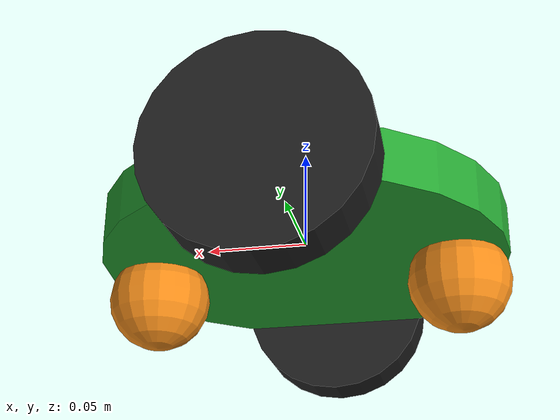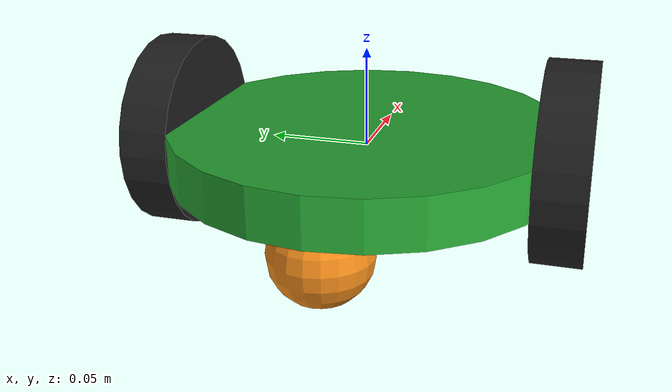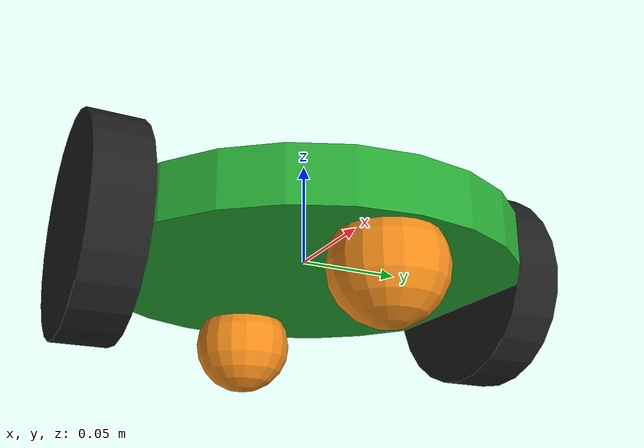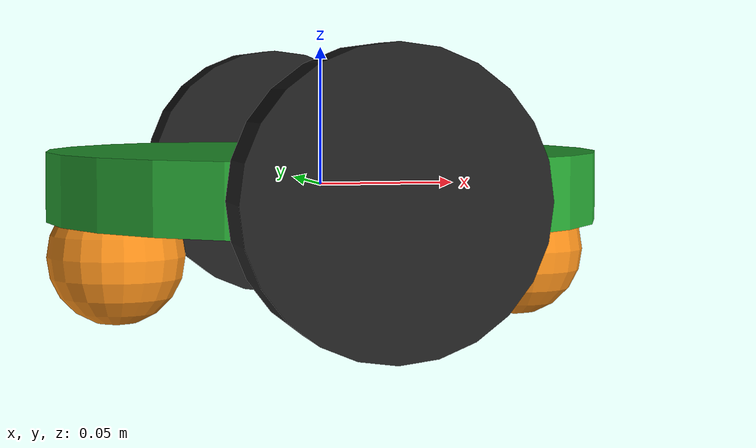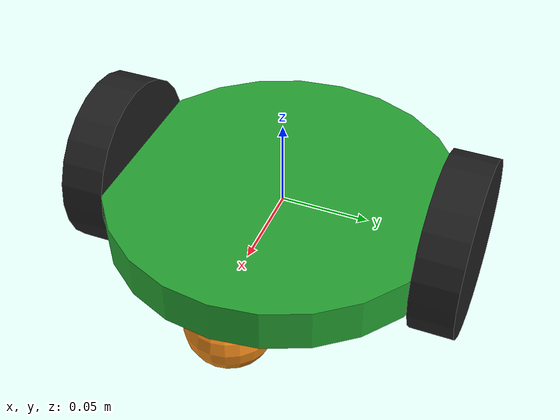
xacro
<?xml version='1.0'?>

<robot name="second_tb3" xmlns:xacro="http://www.ros.org/wiki/xacro">

  <xacro:include filename="$(find rviz_textured_quads)/urdf/differential_drive_robot2.gazebo" />
  <xacro:include filename="$(find rviz_textured_quads)/urdf/materials2.xacro" />
  <xacro:include filename="$(find rviz_textured_quads)/urdf/xacro_variables2.xacro" />

<!--Links Declaration-->

  <link name='chassis'>

    <inertial>
      <mass value="0.5"/>
      <origin xyz="0.20 0.30 0.0" rpy=" 0 44.71 0"/>

      <cylinder_inertia m="10" r="${chasis_cylinder_radius}" h="${chasis_cylinder_height}"/>

      <inertia
          ixx="0.5" ixy="0" ixz="0"
          iyy="1.0" iyz="0"
          izz="0.1"
      />
    </inertial>

    <collision name='collision'>
      <geometry>
        <cylinder radius="${chasis_cylinder_radius}" length="${chasis_cylinder_height}"/>
      </geometry>
           <surface>
            <contact>
              <collide_without_contact>false</collide_without_contact>
            </contact>
          </surface>
          <selfCollide>false</selfCollide>
    </collision>

    <visual name='chassis_visual'>
      <origin xyz="0 0 0" rpy=" 0 0 0"/>
      <geometry>
        <cylinder radius="${chasis_cylinder_radius}" length="${chasis_cylinder_height}"/>
      </geometry>
      <material name="green"/>
    </visual>

    <collision name='caster_collision'>
      <origin xyz="${chasis_caster_x} ${chasis_caster_y} ${chasis_caster_z}" rpy=" ${chasis_caster_r} ${chasis_caster_p} ${chasis_caster_ya}"/>
      <geometry>
        <sphere radius="${chasis_caster_radius}"/>
      </geometry>
      <surface>
            <contact>
              <collide_without_contact>false</collide_without_contact>
            </contact>
          <friction>
          <ode>
            <mu>0</mu>
            <mu2>0</mu2>
            <slip1>1.0</slip1>
            <slip2>1.0</slip2>
          </ode>
        </friction>
      </surface>
      <selfCollide>false</selfCollide>
    </collision>

    <visual name='caster_visual'>
      <origin xyz="${chasis_caster_x} ${chasis_caster_y} ${chasis_caster_z}" rpy=" ${chasis_caster_r} ${chasis_caster_p} ${chasis_caster_ya}"/>
      <geometry>
        <sphere radius="${chasis_caster_radius}"/>
      </geometry>
      <material name="orange"/>
    </visual>

    <collision name='caster_collision2'>
      <origin xyz="${chasis_caster2_x} ${chasis_caster2_y} ${chasis_caster2_z}" rpy=" ${chasis_caster2_r} ${chasis_caster2_p} ${chasis_caster2_ya}"/>
      <geometry>
        <sphere radius="${chasis_caster_radius}"/>
      </geometry>
      <surface>
            <contact>
              <collide_without_contact>false</collide_without_contact>
            </contact>
          <friction>
          <ode>
            <mu>0</mu>
            <mu2>0</mu2>
            <slip1>1.0</slip1>
            <slip2>1.0</slip2>
          </ode>
        </friction>
      </surface>
      <selfCollide>false</selfCollide>
    </collision>

    <visual name='caster2_visual'>
      <origin xyz="${chasis_caster2_x} ${chasis_caster2_y} ${chasis_caster2_z}" rpy=" ${chasis_caster2_r} ${chasis_caster2_p} ${chasis_caster2_ya}"/>
      <geometry>
        <sphere radius="${chasis_caster_radius}"/>
      </geometry>
      <material name="orange"/>
    </visual>
  </link>

  <link name="left_wheel">
    <!--origin xyz="0.1 0.13 0.1" rpy="0 1.5707 1.5707"/-->
    <collision name="collision">
      <origin xyz="${wheel_x} ${wheel_y} ${wheel_z}" rpy="${wheel_r} ${wheel_p} ${wheel_ya}"/>
      <geometry>
        <cylinder radius="${wheel_cylinder_radius}" length="${wheel_cylinder_height}"/>
      </geometry>
          <surface>
            <contact>
              <collide_without_contact>false</collide_without_contact>
            </contact>
          </surface>
          <selfCollide>false</selfCollide>
    </collision>
    <visual name="left_wheel_visual">
      <origin xyz="${wheel_x} ${wheel_y} ${wheel_z}" rpy="${wheel_r} ${wheel_p} ${wheel_ya}"/>
      <geometry>
        <cylinder radius="${wheel_cylinder_radius}" length="${wheel_cylinder_height}"/>
      </geometry>
      <material name="black"/>
    </visual>
    <inertial>
      <origin xyz="${wheel_x} ${wheel_y} ${wheel_z}" rpy="${wheel_r} ${wheel_p} ${wheel_ya}"/>
      <mass value="5"/>
      <cylinder_inertia m="5" r="${wheel_cylinder_radius}" h="${wheel_cylinder_height}"/>
      <inertia
        ixx="1.0" ixy="0.0" ixz="0.0"
        iyy="1.0" iyz="0.0"
        izz="1.0"/>
    </inertial>
  </link>

  <link name="right_wheel">
    <collision name="collision">
      <origin xyz="${wheel_x} ${wheel_y} ${wheel_z}" rpy="${wheel_r} ${wheel_p} ${wheel_ya}"/>
      <geometry>
        <cylinder radius="${wheel_cylinder_radius}" length="${wheel_cylinder_height}"/>
      </geometry>
          <surface>
            <contact>
              <collide_without_contact>false</collide_without_contact>
            </contact>
          </surface>
          <selfCollide>false</selfCollide>
    </collision>
    <visual name="right_wheel_visual">
      <origin xyz="${wheel_x} ${wheel_y} ${wheel_z}" rpy="${wheel_r} ${wheel_p} ${wheel_ya}"/>
      <geometry>
        <cylinder radius="${wheel_cylinder_radius}" length="${wheel_cylinder_height}"/>
      </geometry>
      <material name="black"/>
    </visual>
    <inertial>
      <origin xyz="${wheel_x} ${wheel_y} ${wheel_z}" rpy="${wheel_r} ${wheel_p} ${wheel_ya}"/>
      <mass value="5"/>
      <cylinder_inertia m="5" r="${wheel_cylinder_radius}" h="${wheel_cylinder_height}"/>
      <inertia
        ixx="1.0" ixy="0.0" ixz="0.0"
        iyy="1.0" iyz="0.0"
        izz="1.0"/>
    </inertial>
  </link>

<!--Joint Declaration-->

  <joint type="continuous" name="left_wheel_hinge">
    <origin xyz="${left_wheel_x} ${left_wheel_y} ${left_wheel_z}" rpy="0 0 0"/>
    <child link="left_wheel"/>
    <parent link="chassis"/>
    <axis xyz="0 1 0" rpy="0 0 0"/>
    <limit effort="100" velocity="100"/>
    <joint_properties damping="0.0" friction="0.0"/>
  </joint>

  <joint type="continuous" name="right_wheel_hinge">
    <origin xyz="${right_wheel_x} ${right_wheel_y} ${right_wheel_z}" rpy="0 0 0"/>
    <child link="right_wheel"/>
    <parent link="chassis"/>
    <axis xyz="0 1 0" rpy="0 0 0"/>
    <limit effort="100" velocity="100"/>
    <joint_properties damping="0.0" friction="0.0"/>
  </joint>

</robot>

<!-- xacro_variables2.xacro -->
<robot name="robot" xmlns:xacro="http://www.ros.org/wiki/xacro">

<!--Xacro variable declaration-->

<!--Dimentions-->

  <!--Chasis_cylinder-->
  <xacro:property name="chasis_cylinder_radius" value="0.1" />
  <xacro:property name="chasis_cylinder_height" value="0.025" />

  <!--Chasis_caster-->
  <xacro:property name="chasis_caster_radius" value="0.025" />

  <!--Wheel_cylinder-->
  <xacro:property name="wheel_cylinder_radius" value="0.05" />
  <xacro:property name="wheel_cylinder_height" value="0.025" />

<!--Positions-->
  <!--Chasis_cylinder-->
  <xacro:property name="chasis_cylinder_x" value="0" />
  <xacro:property name="chasis_cylinder_y" value="0" />
  <xacro:property name="chasis_cylinder_z" value="0.05" />

  <xacro:property name="chasis_cylinder_r" value="0" />
  <xacro:property name="chasis_cylinder_p" value="0" />
  <xacro:property name="chasis_cylinder_ya" value="0" />

  <!--Chasis_caster-->
  <xacro:property name="chasis_caster_x" value="-0.075" />
  <xacro:property name="chasis_caster_y" value="0" />
  <xacro:property name="chasis_caster_z" value="-0.025" />

  <xacro:property name="chasis_caster_r" value="0" />
  <xacro:property name="chasis_caster_p" value="0" />
  <xacro:property name="chasis_caster_ya" value="0" />

  <xacro:property name="chasis_caster2_x" value="0.075" />
  <xacro:property name="chasis_caster2_y" value="0" />
  <xacro:property name="chasis_caster2_z" value="-0.025" />

  <xacro:property name="chasis_caster2_r" value="0" />
  <xacro:property name="chasis_caster2_p" value="0" />
  <xacro:property name="chasis_caster2_ya" value="0" />

  <!--Wheel-->
  <xacro:property name="wheel_x" value="0" />
  <xacro:property name="wheel_y" value="0" />
  <xacro:property name="wheel_z" value="0" />

  <xacro:property name="wheel_r" value="0" />
  <xacro:property name="wheel_p" value="1.5707" />
  <xacro:property name="wheel_ya" value="1.5707" />

<!--Joint variables-->

  <xacro:property name="right_wheel_x" value="0.0" />
  <xacro:property name="right_wheel_y" value="0.10" />
  <xacro:property name="right_wheel_z" value="0" />

  <xacro:property name="left_wheel_x" value="0" />
  <xacro:property name="left_wheel_y" value="-0.10" />
  <xacro:property name="left_wheel_z" value="0" />

</robot>
